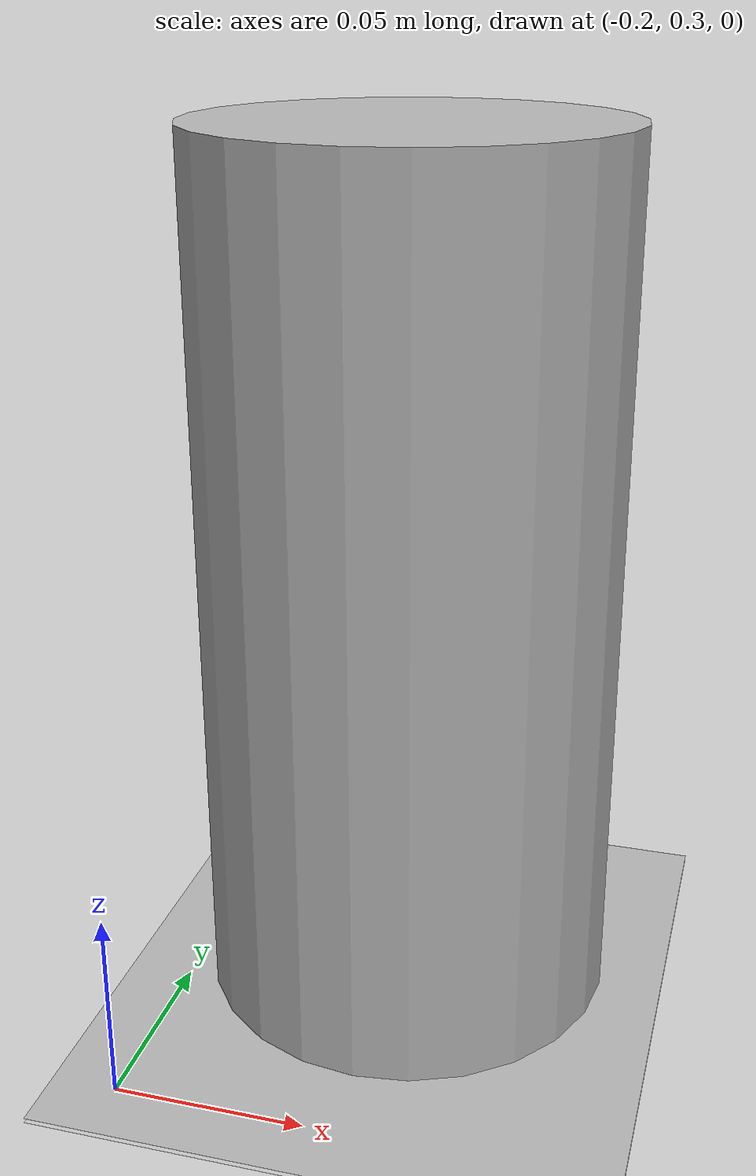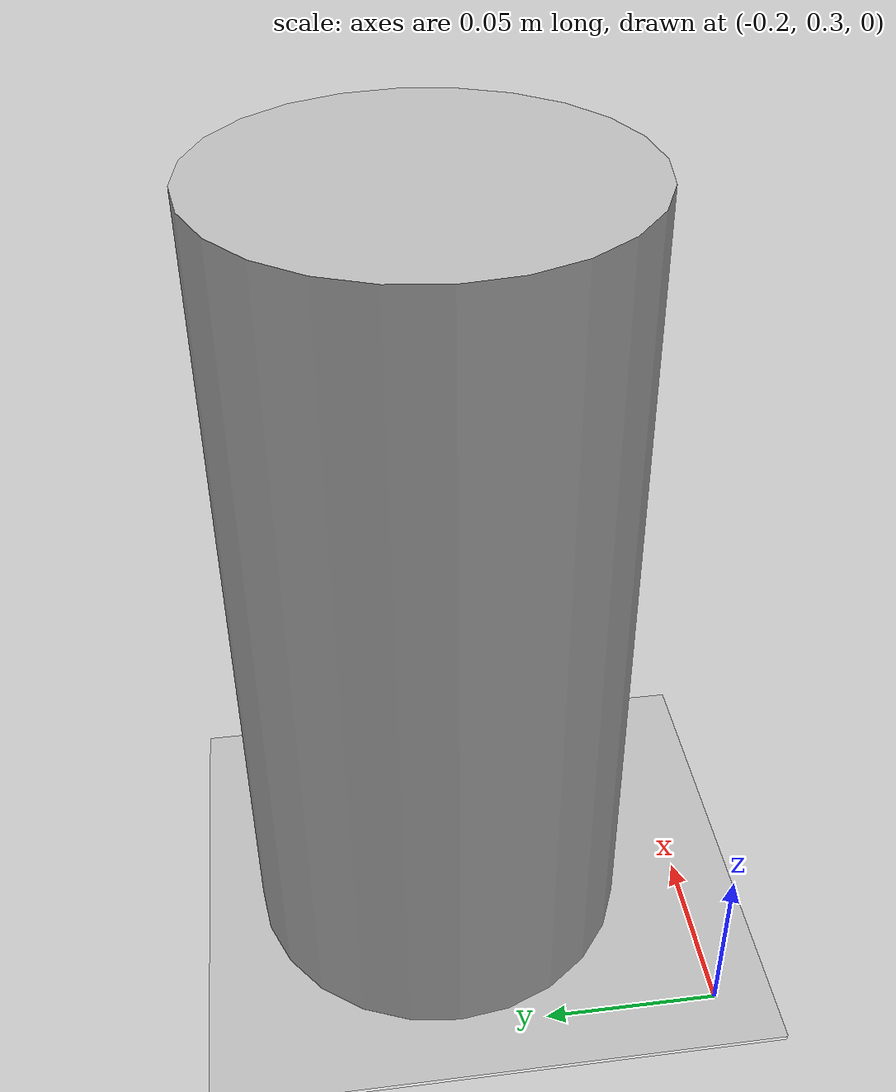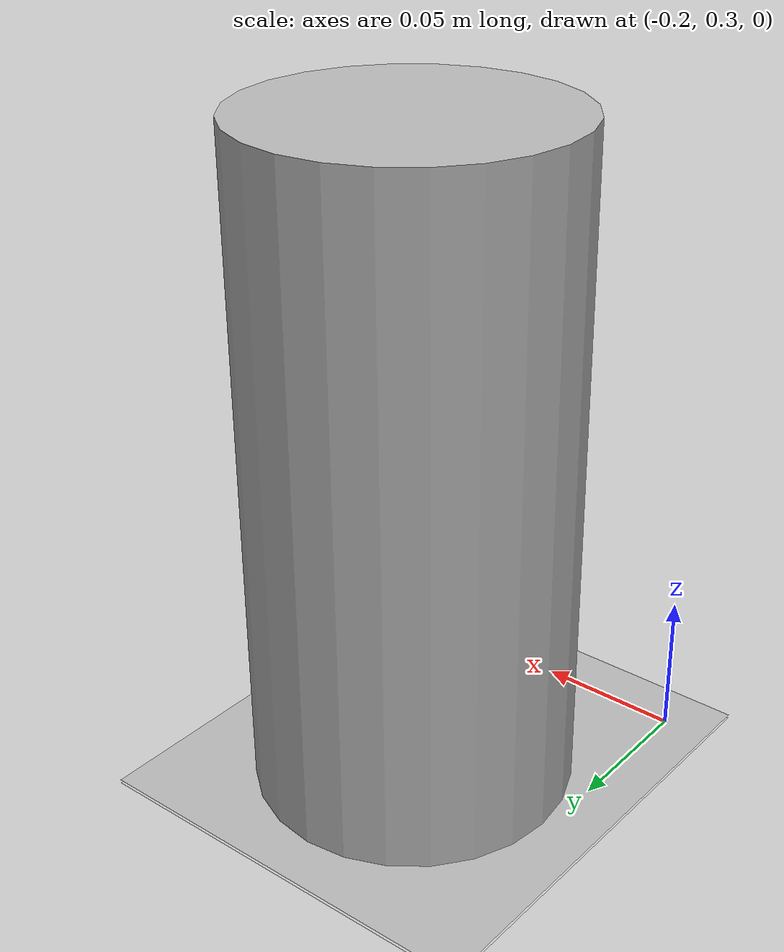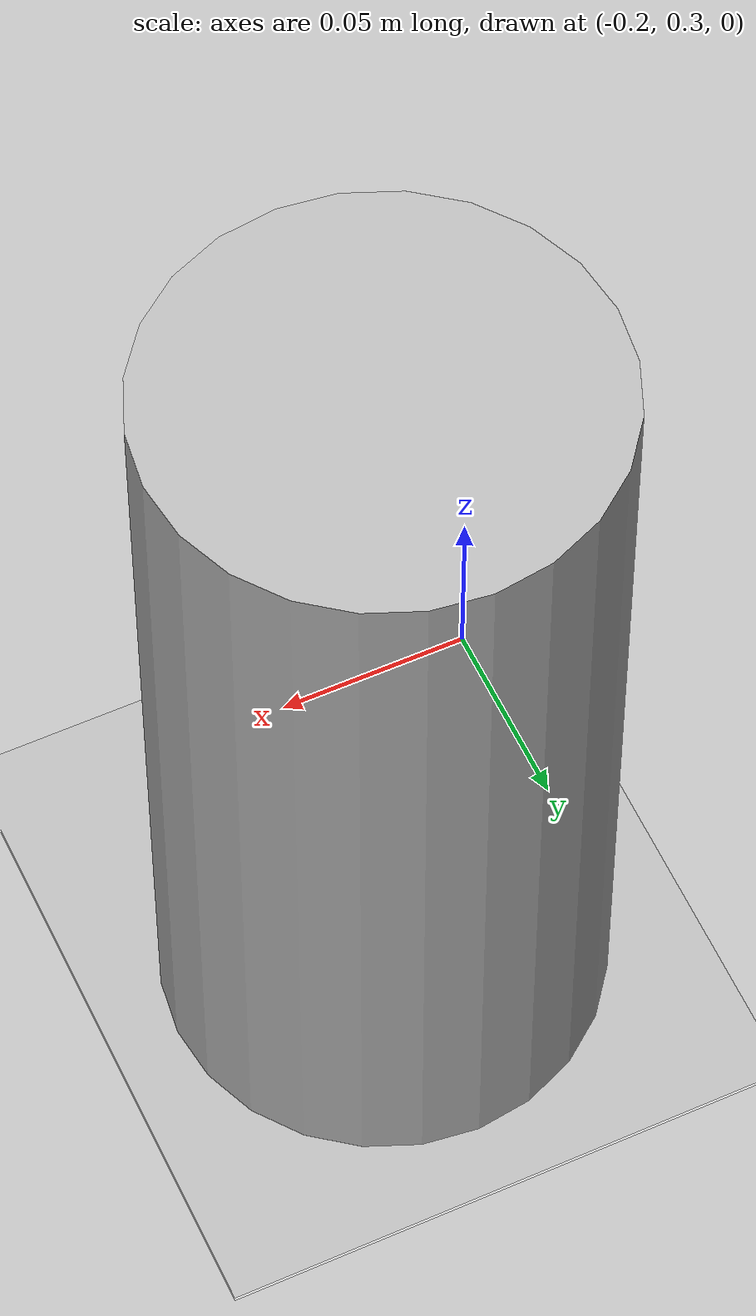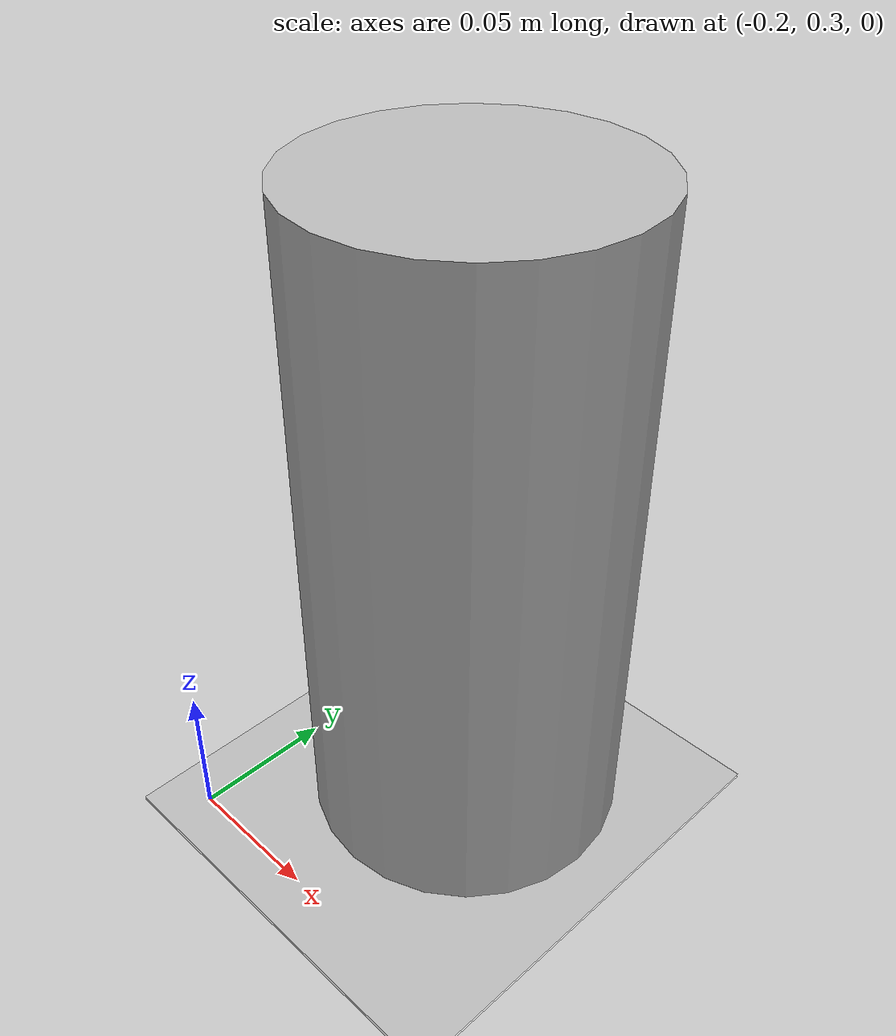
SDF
<sdf version="1.7">
 <world name="default">
  <light name="sun" type="directional">
   <pose>0 0 10 0 -0 0</pose>
   <diffuse>0.8 0.8 0.8 1</diffuse>
   <specular>0.2 0.2 0.2 1</specular>
   <attenuation>
    <range>1000</range>
    <constant>0.9</constant>
    <linear>0.01</linear>
    <quadratic>0.001</quadratic>
   </attenuation>
   <direction>-0.5 0.1 -0.9</direction>
   <spot><inner_angle>0</inner_angle><outer_angle>0</outer_angle><falloff>0</falloff></spot>
  </light>
  <model name="ground_plane">
   <static>1</static>
   <link name="link">
    <collision name="collision">
     <geometry><plane><normal>0 0 1</normal><size>100 100</size></plane></geometry>
     <surface>
      <contact><collide_bitmask>65535</collide_bitmask></contact>
      <friction><ode><mu>100</mu><mu2>50</mu2></ode></friction>
     </surface>
    </collision>
    <visual name="visual">
     <cast_shadows>0</cast_shadows>
     <geometry><plane><normal>0 0 1</normal><size>100 100</size></plane></geometry>
     <material>
      <script><uri>file://media/materials/scripts/gazebo.material</uri><name>Gazebo/Grey</name></script>
     </material>
    </visual>
   </link>
  </model>
  <gravity>0 0 -9.8</gravity>
  <magnetic_field>6e-06 2.3e-05 -4.2e-05</magnetic_field>
  <atmosphere type="adiabatic"/>
  <physics type="ode">
   <max_step_size>0.001</max_step_size>
   <real_time_factor>1</real_time_factor>
   <real_time_update_rate>1000</real_time_update_rate>
  </physics>
  <scene><ambient>0.4 0.4 0.4 1</ambient><background>0.7 0.7 0.7 1</background><shadows>1</shadows></scene>
  <spherical_coordinates>
   <surface_model>EARTH_WGS84</surface_model>
   <latitude_deg>0</latitude_deg>
   <longitude_deg>0</longitude_deg>
   <elevation>0</elevation>
   <heading_deg>0</heading_deg>
  </spherical_coordinates>
  <model name="global">
   <link name="link_0">
    <inertial>
     <mass>1</mass>
     <inertia>
      <ixx>0.166667</ixx>
      <ixy>0</ixy>
      <ixz>0</ixz>
      <iyy>0.166667</iyy>
      <iyz>0</iyz>
      <izz>0.166667</izz>
     </inertia>
    </inertial>
    <kinematic>1</kinematic>
    <visual name="visual">
     <geometry>
      <mesh><uri>/home/harris/catkin_ws/src/boebot_description/meshes/linebase.dae</uri><scale>1 1 1</scale></mesh>
     </geometry>
    </visual>
    <collision name="collision">
     <geometry>
      <mesh><uri>/home/harris/catkin_ws/src/boebot_description/meshes/linebase.dae</uri><scale>1 1 1</scale></mesh>
     </geometry>
     <surface>
      <friction>
       <ode><mu>100</mu><mu2>100</mu2><fdir1>0 0 0</fdir1><slip1>0</slip1><slip2>0</slip2></ode>
       <torsional>
        <coefficient>1</coefficient>
        <patch_radius>0</patch_radius>
        <surface_radius>0</surface_radius>
        <use_patch_radius>1</use_patch_radius>
        <ode><slip>0</slip></ode>
       </torsional>
      </friction>
      <bounce><restitution_coefficient>0</restitution_coefficient><threshold>1e+06</threshold></bounce>
      <contact>
       <collide_without_contact>0</collide_without_contact>
       <collide_without_contact_bitmask>1</collide_without_contact_bitmask>
       <collide_bitmask>1</collide_bitmask>
       <ode>
        <soft_cfm>0</soft_cfm>
        <soft_erp>0.2</soft_erp>
        <kp>1e+13</kp>
        <kd>1</kd>
        <max_vel>0.01</max_vel>
        <min_depth>0</min_depth>
       </ode>
       <bullet>
        <split_impulse>1</split_impulse>
        <split_impulse_penetration_threshold>-0.01</split_impulse_penetration_threshold>
        <soft_cfm>0</soft_cfm>
        <soft_erp>0.2</soft_erp>
        <kp>1e+13</kp>
        <kd>1</kd>
       </bullet>
      </contact>
     </surface>
    </collision>
   </link>
   <static>0</static>
   <pose>0 0 0.001 0 -0 0</pose>
  </model>
  <model name="beer">
   <link name="link">
    <pose>0 0 0.115 0 -0 0</pose>
    <inertial>
     <mass>0.39</mass>
     <inertia><ixx>0.00058</ixx><ixy>0</ixy><ixz>0</ixz><iyy>0.00058</iyy><iyz>0</iyz><izz>0.00019</izz></inertia>
    </inertial>
    <collision name="collision">
     <geometry><cylinder><radius>0.055</radius><length>0.23</length></cylinder></geometry>
    </collision>
    <visual name="visual">
     <geometry><cylinder><radius>0.055</radius><length>0.23</length></cylinder></geometry>
     <material>
      <script>
       <uri>model://beer/materials/scripts</uri>
       <uri>model://beer/materials/textures</uri>
       <name>Beer/Diffuse</name>
      </script>
     </material>
    </visual>
   </link>
   <pose>-0.143087 0.37475 0.001002 -3e-05 1.2e-05 -6.5e-05</pose>
  </model>
 </world>
</sdf>
